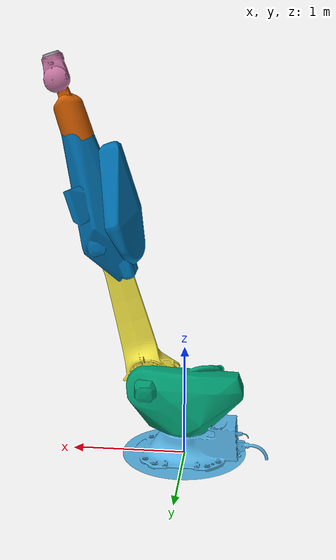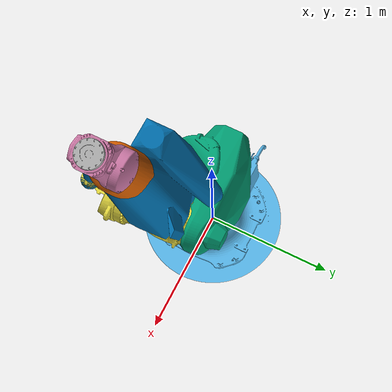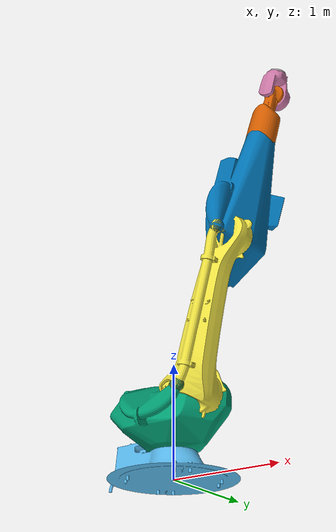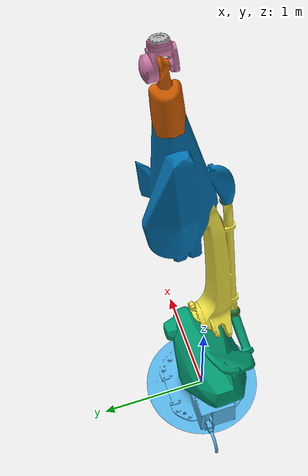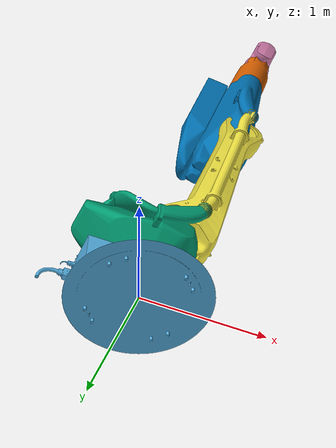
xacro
<?xml version="1.0"?>
<robot xmlns:xacro="http://www.ros.org/wiki/xacro" name="kr150_r3100_2">
  <!-- Import macro files  -->
  <xacro:include filename="$(find kuka_quantec_support)/urdf/kr150_r3100_2_macro.xacro"/>
  <xacro:include filename="$(find kuka_quantec_support)/urdf/kr_quantec_ros2_control_macro.xacro"/>
  <!-- Read additional arguments  -->
  <xacro:arg name="driver_version" default="rsi_only"/>
  <xacro:arg name="mode" default="hardware"/>
  <xacro:arg name="gpio_config" default=""/>
  <xacro:arg name="roundtrip_time" default="0"/>
  <xacro:arg name="client_ip" default="0.0.0.0"/>
  <xacro:arg name="client_port" default="59152"/>
  <xacro:arg name="mxa_client_port" default="1337"/>
  <xacro:arg name="controller_ip" default="0.0.0.0"/>
  <xacro:arg name="verify_robot_model" default="true"/>
  <xacro:arg name="prefix" default=""/>
  <xacro:arg name="x" default="0"/>
  <xacro:arg name="y" default="0"/>
  <xacro:arg name="z" default="0"/>
  <xacro:arg name="roll" default="0"/>
  <xacro:arg name="pitch" default="0"/>
  <xacro:arg name="yaw" default="0"/>
  <xacro:arg name="rsi_xml_config_file" default=""/>
  <xacro:kuka_quantec_ros2_control name="$(arg prefix)kr150_r3100_2" driver_version="$(arg driver_version)" client_ip="$(arg client_ip)" client_port="$(arg client_port)" mxa_client_port="$(arg mxa_client_port)" controller_ip="$(arg controller_ip)" prefix="$(arg prefix)" mode="$(arg mode)" gpio_config="$(arg gpio_config)" roundtrip_time="$(arg roundtrip_time)" verify_robot_model="$(arg verify_robot_model)" rsi_xml_config_file="$(arg rsi_xml_config_file)">
    <ext_axes_ros2_control_joints/>
  </xacro:kuka_quantec_ros2_control>
  <!-- world link -->
  <link name="world"/>
  <!-- robot links, joints -->
  <xacro:kuka_kr150_r3100_2_robot prefix="$(arg prefix)" package_name="kuka_quantec_support"/>
  <!-- default world - base_link joint -->
  <joint name="$(arg prefix)world-base_link" type="fixed">
    <parent link="world"/>
    <child link="$(arg prefix)base_link"/>
    <origin xyz="$(arg x) $(arg y) $(arg z)" rpy="$(arg roll) $(arg pitch) $(arg yaw)"/>
  </joint>
</robot>

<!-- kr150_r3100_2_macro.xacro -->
<robot xmlns:xacro="http://wiki.ros.org/xacro">
  <xacro:macro name="kuka_kr150_r3100_2_robot" params="prefix package_name">
    <!-- links - main serial chain -->
    <link name="${prefix}base_link">
      <collision>
        <geometry>
          <mesh filename="package://${package_name}/meshes/kr150_r3100_2/collision/base_link.stl"/>
        </geometry>
        <origin rpy="0.0 -0.0 0.0" xyz="0.0 0.0 0.0"/>
      </collision>
      <inertial>
        <inertia ixx="12.8308803908269" ixy="0.0" ixz="0.0" iyy="9.01196989503174" iyz="0.0" izz="14.2958860155811"/>
        <mass value="2.2596E2"/>
        <origin rpy="-0.050860131411839364 -0.0019883389878403855 1.5231487443995257" xyz="-0.0594893335103558 0.0021559506107275703 0.20325069304301602"/>
      </inertial>
      <visual>
        <geometry>
          <mesh filename="package://${package_name}/meshes/kr150_r3100_2/visual/base_link.dae"/>
        </geometry>
        <origin rpy="0.0 -0.0 0.0" xyz="0.0 0.0 0.0"/>
      </visual>
    </link>
    <link name="${prefix}link_1">
      <collision>
        <geometry>
          <mesh filename="package://${package_name}/meshes/kr150_r3100_2/collision/link_1.stl"/>
        </geometry>
        <origin rpy="-3.141592653589793 0.0 -0.0" xyz="0.0 -3.742520618194312e-17 0.30560000000000004"/>
      </collision>
      <inertial>
        <inertia ixx="13.2088588047575" ixy="0.0" ixz="0.0" iyy="31.4949853249961" iyz="0.0" izz="33.8838908182464"/>
        <mass value="3.6307E2"/>
        <origin rpy="1.8661968490595335 0.10258164628689437 -0.21632411420056308" xyz="0.0287871760266615 0.011875249400942 -0.23402828104773202"/>
      </inertial>
      <visual>
        <geometry>
          <mesh filename="package://${package_name}/meshes/kr150_r3100_2/visual/link_1.dae"/>
        </geometry>
        <origin rpy="-3.141592653589793 0.0 -0.0" xyz="0.0 -3.742520618194312e-17 0.30560000000000004"/>
      </visual>
    </link>
    <link name="${prefix}link_2">
      <collision>
        <geometry>
          <mesh filename="package://${package_name}/meshes/kr150_r3100_2/collision/link_2.stl"/>
        </geometry>
        <origin rpy="1.5707963267948968 -0.0 1.5707963267948966" xyz="-0.645 -0.32999999999999996 0.07200000000000009"/>
      </collision>
      <inertial>
        <inertia ixx="6.11156632969732" ixy="0.0" ixz="0.0" iyy="82.7509302435823" iyz="0.0" izz="83.2585967164398"/>
        <mass value="2.5056E2"/>
        <origin rpy="0.5376277345260637 0.09067448308201613 0.007191247120022789" xyz="0.577871168582376 -0.0013846982758620701 -0.125571679438059"/>
      </inertial>
      <visual>
        <geometry>
          <mesh filename="package://${package_name}/meshes/kr150_r3100_2/visual/link_2.dae"/>
        </geometry>
        <origin rpy="1.5707963267948968 -0.0 1.5707963267948966" xyz="-0.645 -0.32999999999999996 0.07200000000000009"/>
      </visual>
    </link>
    <link name="${prefix}link_3">
      <collision>
        <geometry>
          <mesh filename="package://${package_name}/meshes/kr150_r3100_2/collision/link_3.stl"/>
        </geometry>
        <origin rpy="1.5707963267948968 -0.0 -0.0" xyz="-0.33000000000000007 1.995 0.1750000000000001"/>
      </collision>
      <inertial>
        <inertia ixx="3.48793924588657" ixy="0.0" ixz="0.0" iyy="31.6841306730114" iyz="0.0" izz="32.6311061105752"/>
        <mass value="1.9993E2"/>
        <origin rpy="2.1420966009616187 -0.0660111257078756 -0.063804359228265" xyz="0.26233216625819 -0.07663387185514929 0.137675034261992"/>
      </inertial>
      <visual>
        <geometry>
          <mesh filename="package://${package_name}/meshes/kr150_r3100_2/visual/link_3.dae"/>
        </geometry>
        <origin rpy="1.5707963267948968 -0.0 -0.0" xyz="-0.33000000000000007 1.995 0.1750000000000001"/>
      </visual>
    </link>
    <link name="${prefix}link_4">
      <collision>
        <geometry>
          <mesh filename="package://${package_name}/meshes/kr150_r3100_2/collision/link_4.stl"/>
        </geometry>
        <origin rpy="1.8369701987210297e-16 1.5707963267948966 0.0" xyz="-2.11 2.0519898299681579e-19 1.3579999999999999"/>
      </collision>
      <inertial>
        <inertia ixx="0.161324366141546" ixy="0.0" ixz="0.0" iyy="1.3645139545175" iyz="0.0" izz="1.39158127634524"/>
        <mass value="4.2411794929E1"/>
        <origin rpy="1.5711454552070345 -1.4368320268822927 -1.5712071247684845" xyz="-7.5764465140740704E-6 0.0192023882938968 -0.197888748752496"/>
      </inertial>
      <visual>
        <geometry>
          <mesh filename="package://${package_name}/meshes/kr150_r3100_2/visual/link_4.dae"/>
        </geometry>
        <origin rpy="1.8369701987210297e-16 1.5707963267948966 0.0" xyz="-2.11 2.0519898299681579e-19 1.3579999999999999"/>
      </visual>
    </link>
    <link name="${prefix}link_5">
      <collision>
        <geometry>
          <mesh filename="package://${package_name}/meshes/kr150_r3100_2/collision/link_5.stl"/>
        </geometry>
        <origin rpy="1.5707963267948968 -3.749399456654644e-33 -6.123233995736766e-17" xyz="-1.7499999999999998 2.11 -0.09600000000000004"/>
      </collision>
      <inertial>
        <inertia ixx="0.200111908543801" ixy="0.0" ixz="0.0" iyy="0.120553626775201" iyz="0.0" izz="0.220956494925724"/>
        <mass value="1.6991732133E1"/>
        <origin rpy="1.5704759351872302 -0.8762558401259876 -0.0022796281329229" xyz="0.062235569792816796 3.0314811620972E-4 -0.0657532427101687"/>
      </inertial>
      <visual>
        <geometry>
          <mesh filename="package://${package_name}/meshes/kr150_r3100_2/visual/link_5.dae"/>
        </geometry>
        <origin rpy="1.5707963267948968 -3.749399456654644e-33 -6.123233995736766e-17" xyz="-1.7499999999999998 2.11 -0.09600000000000004"/>
      </visual>
    </link>
    <link name="${prefix}link_6">
      <collision>
        <geometry>
          <mesh filename="package://${package_name}/meshes/kr150_r3100_2/collision/link_6.stl"/>
        </geometry>
        <origin rpy="1.2246467991473532e-16 1.5707963267948966 0.0" xyz="-2.1100000000000003 -1.3543772457760985e-16 1.9164999999999999"/>
      </collision>
      <inertial>
        <inertia ixx="0.0114565" ixy="0.0" ixz="0.0" iyy="0.0114565" iyz="0.0" izz="0.014535"/>
        <mass value="6.6E0"/>
        <origin rpy="0.0 -0.0 0.0" xyz="0.0 0.0 -0.006500000000000001"/>
      </inertial>
      <visual>
        <geometry>
          <mesh filename="package://${package_name}/meshes/kr150_r3100_2/visual/link_6.dae"/>
        </geometry>
        <origin rpy="1.2246467991473532e-16 1.5707963267948966 0.0" xyz="-2.1100000000000003 -1.3543772457760985e-16 1.9164999999999999"/>
      </visual>
    </link>
    <joint name="${prefix}joint_1" type="revolute">
      <axis xyz="0.0 0.0 1.0"/>
      <child link="${prefix}link_1"/>
      <limit effort="7.29E3" lower="-3.2288591125E0" upper="3.2288591125E0" velocity="1.83259571459405E0"/>
      <origin rpy="3.141592653589793 -0.0 0.0" xyz="0.0 0.0 0.30560000000000004"/>
      <parent link="${prefix}base_link"/>
    </joint>
    <joint name="${prefix}joint_2" type="revolute">
      <axis xyz="0.0 0.0 1.0"/>
      <child link="${prefix}link_2"/>
      <limit effort="8.91E3" lower="-2.44346095E0" upper="-8.72664625E-2" velocity="1.86750229963393E0"/>
      <origin rpy="1.5707963267948966 -0.0 0.0" xyz="0.33 0.07200000000000001 -0.3394"/>
      <parent link="${prefix}link_1"/>
    </joint>
    <joint name="${prefix}joint_3" type="revolute">
      <axis xyz="0.0 0.0 1.0"/>
      <child link="${prefix}link_3"/>
      <limit effort="7.53874623365738E3" lower="-2.0943951E0" upper="2.93215314E0" velocity="1.98967534727354E0"/>
      <origin rpy="0.0 -0.0 0.0" xyz="1.35 0.0 -0.10300000000000001"/>
      <parent link="${prefix}link_2"/>
    </joint>
    <joint name="${prefix}joint_4" type="revolute">
      <axis xyz="0.0 0.0 1.0"/>
      <child link="${prefix}link_4"/>
      <limit effort="2.43125052899853E3" lower="-6.108652375E0" upper="6.108652375E0" velocity="3.31612557878923E0"/>
      <origin rpy="1.5707963267948966 -0.0 -1.5707963267948966" xyz="1.028 -0.115 0.17500000000000002"/>
      <parent link="${prefix}link_3"/>
    </joint>
    <joint name="${prefix}joint_5" type="revolute">
      <axis xyz="0.0 0.0 1.0"/>
      <child link="${prefix}link_5"/>
      <limit effort="1.46056085236985E3" lower="-2.1816615625E0" upper="2.1816615625E0" velocity="3.14159265358979E0"/>
      <origin rpy="0.0 1.5707963267948966 1.5707963267948966" xyz="0.0 0.096 -0.392"/>
      <parent link="${prefix}link_4"/>
    </joint>
    <joint name="${prefix}joint_6" type="revolute">
      <axis xyz="0.0 0.0 1.0"/>
      <child link="${prefix}link_6"/>
      <limit effort="8.92539E2" lower="-6.108652375E0" upper="6.108652375E0" velocity="4.53785605518526E0"/>
      <origin rpy="1.5707963267948966 -0.0 -1.5707963267948966" xyz="0.1665 0.0 -0.096"/>
      <parent link="${prefix}link_5"/>
    </joint>
    <!-- ROS-Industrial 'base' frame - equivalent of 'KUKA ROBROOT'-->
    <link name="${prefix}base"/>
    <joint name="${prefix}base_link-base" type="fixed">
      <origin xyz="0 0 0" rpy="0 0 0"/>
      <parent link="${prefix}base_link"/>
      <child link="${prefix}base"/>
    </joint>
    <!-- ROS-Industrial 'flange' frame - attachment point for EEF models -->
    <link name="${prefix}flange"/>
    <joint name="${prefix}link6-flange" type="fixed">
      <child link="${prefix}flange"/>
      <origin rpy="0.0 1.5707963267948966 0.0" xyz="0.0 0.0 -0.0485"/>
      <parent link="${prefix}link_6"/>
    </joint>
    <!-- ROS-Industrial 'tool0' frame - all-zeros tool frame -->
    <link name="${prefix}tool0"/>
    <joint name="${prefix}link6-tool0" type="fixed">
      <child link="${prefix}tool0"/>
      <origin rpy="3.141592653589793 1.2246467991473532E-16 3.141592653589793" xyz="0.0 0.0 -0.0485"/>
      <parent link="${prefix}link_6"/>
    </joint>
  </xacro:macro>
</robot>
